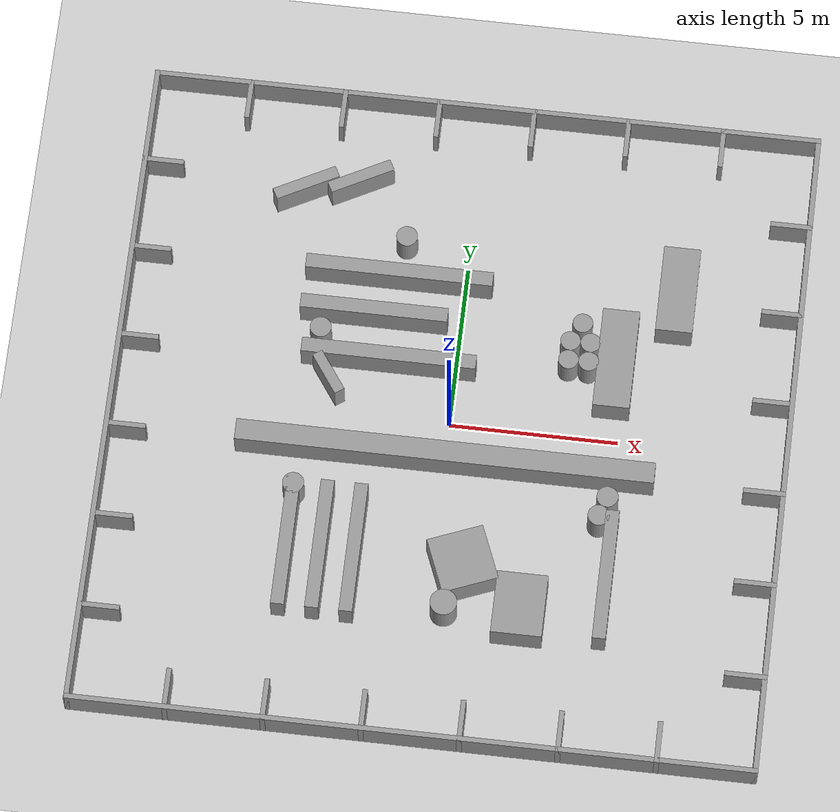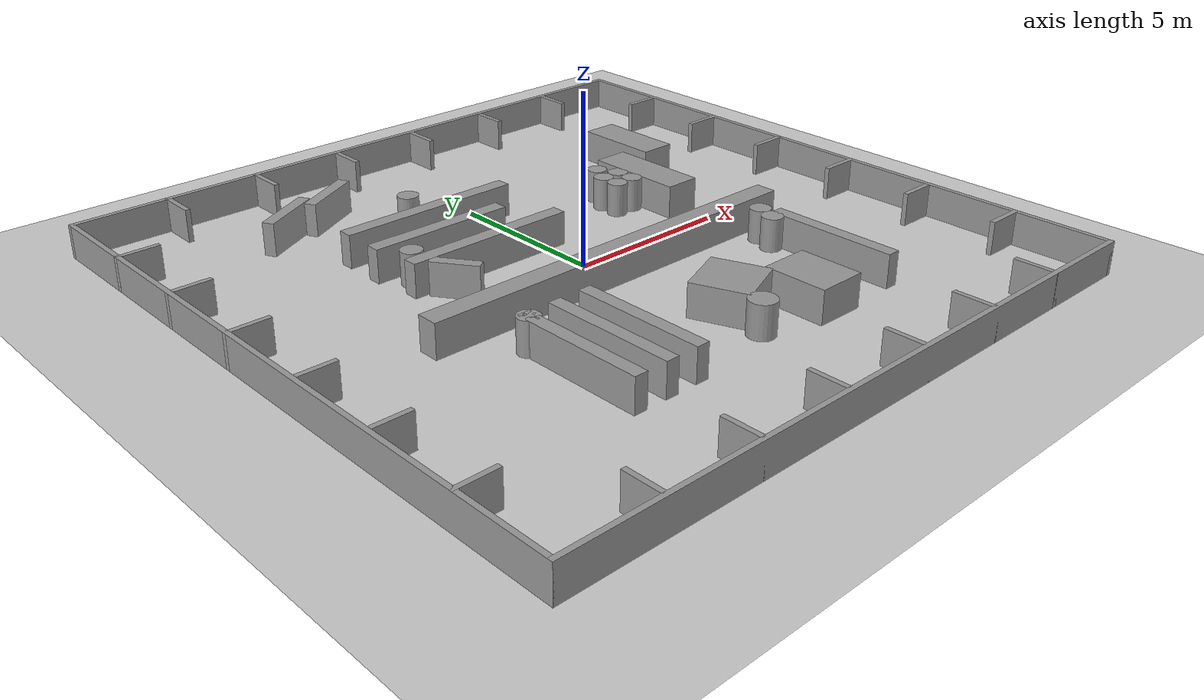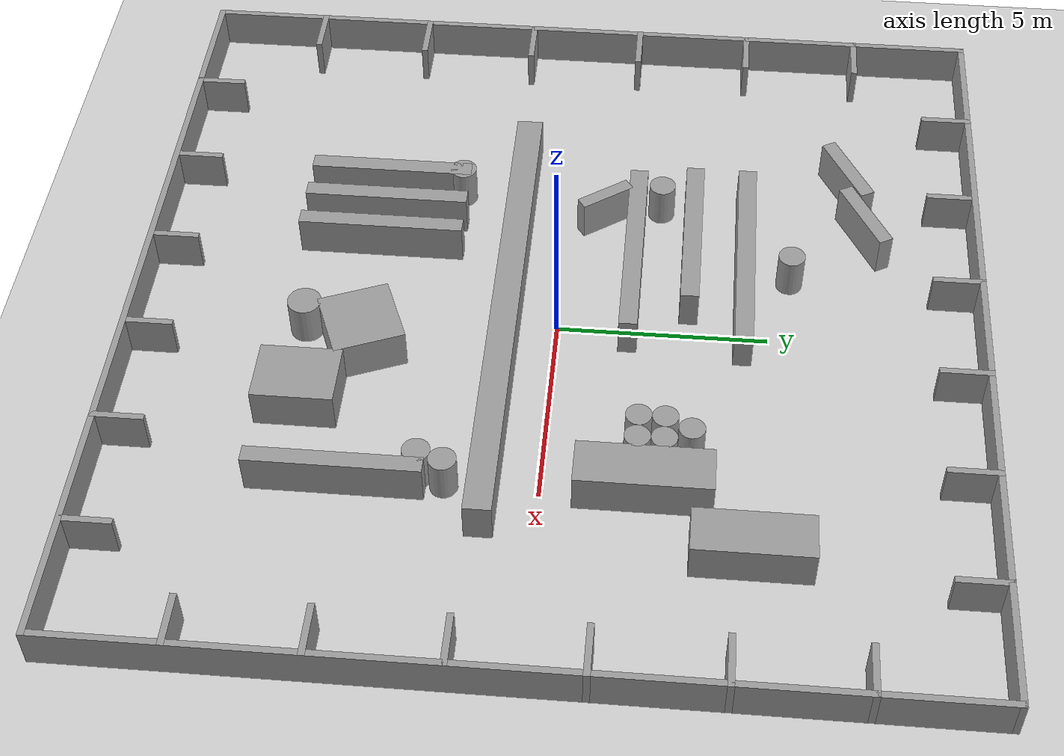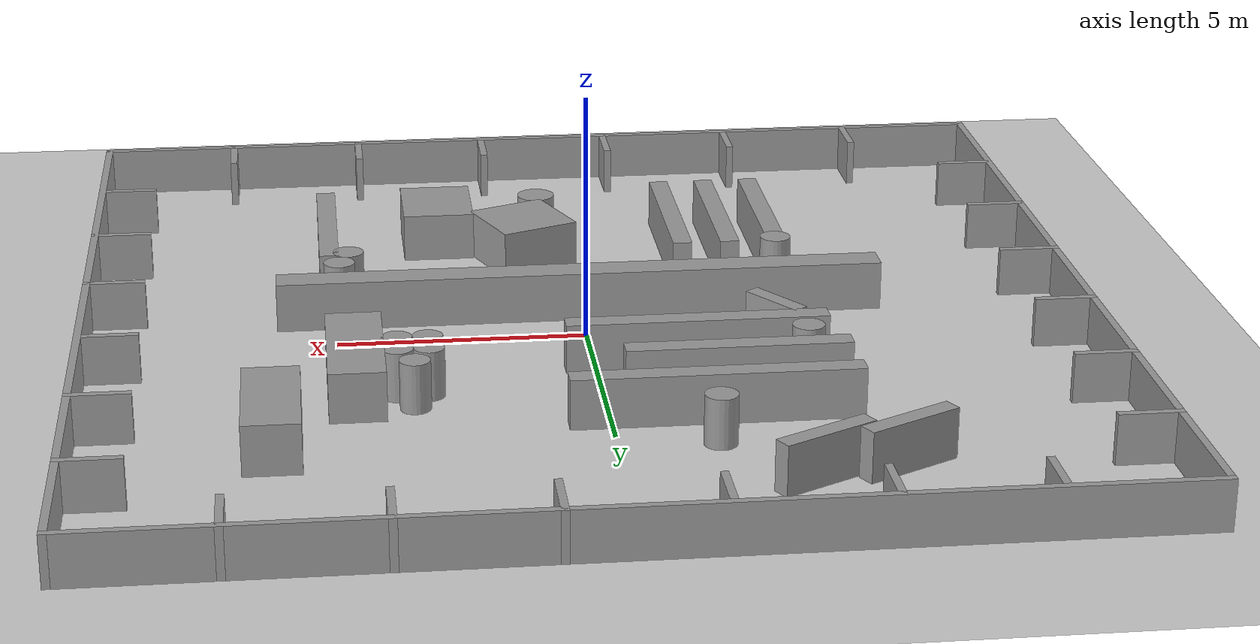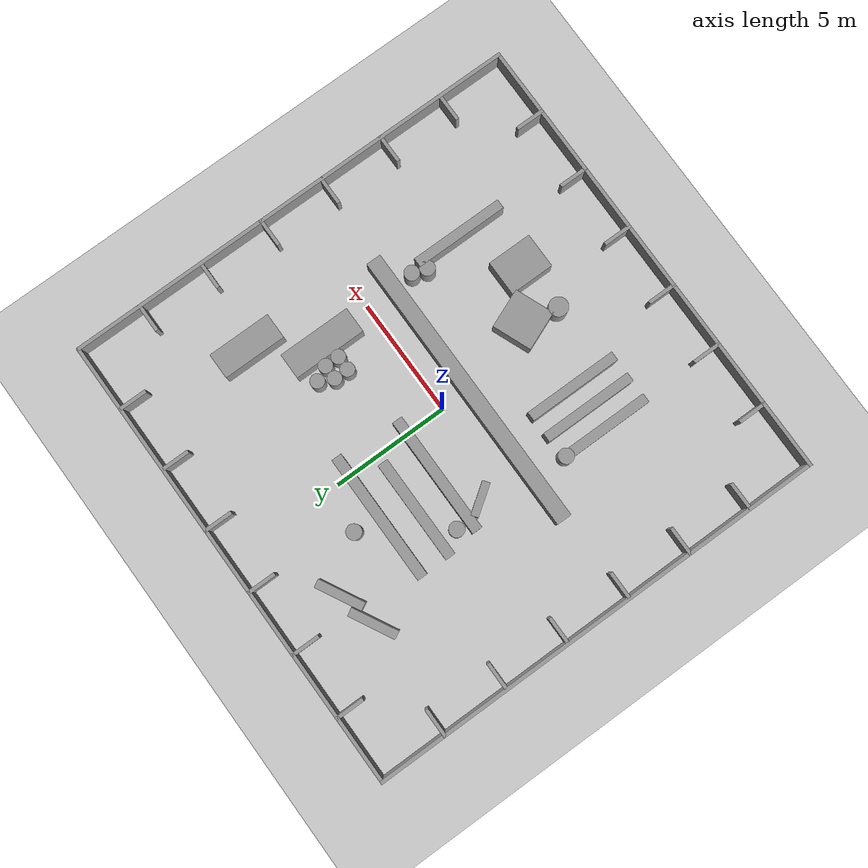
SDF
<?xml version="1.0" ?>
<sdf version="1.6">
  <world name="hall">

    <include><uri>model://sun</uri></include>
    <include><uri>model://ground_plane</uri></include>

    <physics name="default_physics" default="true" type="ode">
      <max_step_size>0.001</max_step_size>
      <real_time_factor>1.0</real_time_factor>
      <real_time_update_rate>1000</real_time_update_rate>
    </physics>

    <scene>
      <ambient>0.4 0.4 0.4 1</ambient>
      <background>0.7 0.7 0.7 1</background>
      <shadows>false</shadows>
    </scene>

    <model name="hall_obstacles">
      <static>true</static>
      <link name="body">
      <collision name="col_0">
        <pose>0.0000 -10.0000 0.5000 0 0 0.00000</pose>
        <geometry>
          <box><size>20.1500 0.1500 1.0000</size></box>
        </geometry>
      </collision>
      <visual name="vis_0">
        <pose>0.0000 -10.0000 0.5000 0 0 0.00000</pose>
        <geometry>
          <box><size>20.1500 0.1500 1.0000</size></box>
        </geometry>
        <material>
          <script>
            <uri>file://media/materials/scripts/gazebo.material</uri>
            <name>Gazebo/Grey</name>
          </script>
        </material>
      </visual>
      <collision name="col_1">
        <pose>10.0000 0.0000 0.5000 0 0 1.57080</pose>
        <geometry>
          <box><size>20.1500 0.1500 1.0000</size></box>
        </geometry>
      </collision>
      <visual name="vis_1">
        <pose>10.0000 0.0000 0.5000 0 0 1.57080</pose>
        <geometry>
          <box><size>20.1500 0.1500 1.0000</size></box>
        </geometry>
        <material>
          <script>
            <uri>file://media/materials/scripts/gazebo.material</uri>
            <name>Gazebo/Grey</name>
          </script>
        </material>
      </visual>
      <collision name="col_2">
        <pose>0.0000 10.0000 0.5000 0 0 3.14159</pose>
        <geometry>
          <box><size>20.1500 0.1500 1.0000</size></box>
        </geometry>
      </collision>
      <visual name="vis_2">
        <pose>0.0000 10.0000 0.5000 0 0 3.14159</pose>
        <geometry>
          <box><size>20.1500 0.1500 1.0000</size></box>
        </geometry>
        <material>
          <script>
            <uri>file://media/materials/scripts/gazebo.material</uri>
            <name>Gazebo/Grey</name>
          </script>
        </material>
      </visual>
      <collision name="col_3">
        <pose>-10.0000 0.0000 0.5000 0 0 -1.57080</pose>
        <geometry>
          <box><size>20.1500 0.1500 1.0000</size></box>
        </geometry>
      </collision>
      <visual name="vis_3">
        <pose>-10.0000 0.0000 0.5000 0 0 -1.57080</pose>
        <geometry>
          <box><size>20.1500 0.1500 1.0000</size></box>
        </geometry>
        <material>
          <script>
            <uri>file://media/materials/scripts/gazebo.material</uri>
            <name>Gazebo/Grey</name>
          </script>
        </material>
      </visual>
      <collision name="col_4">
        <pose>-7.1429 -9.4500 0.5000 0 0 1.57080</pose>
        <geometry>
          <box><size>1.2500 0.1500 1.0000</size></box>
        </geometry>
      </collision>
      <visual name="vis_4">
        <pose>-7.1429 -9.4500 0.5000 0 0 1.57080</pose>
        <geometry>
          <box><size>1.2500 0.1500 1.0000</size></box>
        </geometry>
        <material>
          <script>
            <uri>file://media/materials/scripts/gazebo.material</uri>
            <name>Gazebo/Grey</name>
          </script>
        </material>
      </visual>
      <collision name="col_5">
        <pose>-7.1429 9.4500 0.5000 0 0 -1.57080</pose>
        <geometry>
          <box><size>1.2500 0.1500 1.0000</size></box>
        </geometry>
      </collision>
      <visual name="vis_5">
        <pose>-7.1429 9.4500 0.5000 0 0 -1.57080</pose>
        <geometry>
          <box><size>1.2500 0.1500 1.0000</size></box>
        </geometry>
        <material>
          <script>
            <uri>file://media/materials/scripts/gazebo.material</uri>
            <name>Gazebo/Grey</name>
          </script>
        </material>
      </visual>
      <collision name="col_6">
        <pose>-9.4500 -7.1429 0.5000 0 0 0.00000</pose>
        <geometry>
          <box><size>1.2500 0.1500 1.0000</size></box>
        </geometry>
      </collision>
      <visual name="vis_6">
        <pose>-9.4500 -7.1429 0.5000 0 0 0.00000</pose>
        <geometry>
          <box><size>1.2500 0.1500 1.0000</size></box>
        </geometry>
        <material>
          <script>
            <uri>file://media/materials/scripts/gazebo.material</uri>
            <name>Gazebo/Grey</name>
          </script>
        </material>
      </visual>
      <collision name="col_7">
        <pose>9.4500 -7.1429 0.5000 0 0 3.14159</pose>
        <geometry>
          <box><size>1.2500 0.1500 1.0000</size></box>
        </geometry>
      </collision>
      <visual name="vis_7">
        <pose>9.4500 -7.1429 0.5000 0 0 3.14159</pose>
        <geometry>
          <box><size>1.2500 0.1500 1.0000</size></box>
        </geometry>
        <material>
          <script>
            <uri>file://media/materials/scripts/gazebo.material</uri>
            <name>Gazebo/Grey</name>
          </script>
        </material>
      </visual>
      <collision name="col_8">
        <pose>-4.2857 -9.4500 0.5000 0 0 1.57080</pose>
        <geometry>
          <box><size>1.2500 0.1500 1.0000</size></box>
        </geometry>
      </collision>
      <visual name="vis_8">
        <pose>-4.2857 -9.4500 0.5000 0 0 1.57080</pose>
        <geometry>
          <box><size>1.2500 0.1500 1.0000</size></box>
        </geometry>
        <material>
          <script>
            <uri>file://media/materials/scripts/gazebo.material</uri>
            <name>Gazebo/Grey</name>
          </script>
        </material>
      </visual>
      <collision name="col_9">
        <pose>-4.2857 9.4500 0.5000 0 0 -1.57080</pose>
        <geometry>
          <box><size>1.2500 0.1500 1.0000</size></box>
        </geometry>
      </collision>
      <visual name="vis_9">
        <pose>-4.2857 9.4500 0.5000 0 0 -1.57080</pose>
        <geometry>
          <box><size>1.2500 0.1500 1.0000</size></box>
        </geometry>
        <material>
          <script>
            <uri>file://media/materials/scripts/gazebo.material</uri>
            <name>Gazebo/Grey</name>
          </script>
        </material>
      </visual>
      <collision name="col_10">
        <pose>-9.4500 -4.2857 0.5000 0 0 0.00000</pose>
        <geometry>
          <box><size>1.2500 0.1500 1.0000</size></box>
        </geometry>
      </collision>
      <visual name="vis_10">
        <pose>-9.4500 -4.2857 0.5000 0 0 0.00000</pose>
        <geometry>
          <box><size>1.2500 0.1500 1.0000</size></box>
        </geometry>
        <material>
          <script>
            <uri>file://media/materials/scripts/gazebo.material</uri>
            <name>Gazebo/Grey</name>
          </script>
        </material>
      </visual>
      <collision name="col_11">
        <pose>9.4500 -4.2857 0.5000 0 0 3.14159</pose>
        <geometry>
          <box><size>1.2500 0.1500 1.0000</size></box>
        </geometry>
      </collision>
      <visual name="vis_11">
        <pose>9.4500 -4.2857 0.5000 0 0 3.14159</pose>
        <geometry>
          <box><size>1.2500 0.1500 1.0000</size></box>
        </geometry>
        <material>
          <script>
            <uri>file://media/materials/scripts/gazebo.material</uri>
            <name>Gazebo/Grey</name>
          </script>
        </material>
      </visual>
      <collision name="col_12">
        <pose>-1.4286 -9.4500 0.5000 0 0 1.57080</pose>
        <geometry>
          <box><size>1.2500 0.1500 1.0000</size></box>
        </geometry>
      </collision>
      <visual name="vis_12">
        <pose>-1.4286 -9.4500 0.5000 0 0 1.57080</pose>
        <geometry>
          <box><size>1.2500 0.1500 1.0000</size></box>
        </geometry>
        <material>
          <script>
            <uri>file://media/materials/scripts/gazebo.material</uri>
            <name>Gazebo/Grey</name>
          </script>
        </material>
      </visual>
      <collision name="col_13">
        <pose>-1.4286 9.4500 0.5000 0 0 -1.57080</pose>
        <geometry>
          <box><size>1.2500 0.1500 1.0000</size></box>
        </geometry>
      </collision>
      <visual name="vis_13">
        <pose>-1.4286 9.4500 0.5000 0 0 -1.57080</pose>
        <geometry>
          <box><size>1.2500 0.1500 1.0000</size></box>
        </geometry>
        <material>
          <script>
            <uri>file://media/materials/scripts/gazebo.material</uri>
            <name>Gazebo/Grey</name>
          </script>
        </material>
      </visual>
      <collision name="col_14">
        <pose>-9.4500 -1.4286 0.5000 0 0 0.00000</pose>
        <geometry>
          <box><size>1.2500 0.1500 1.0000</size></box>
        </geometry>
      </collision>
      <visual name="vis_14">
        <pose>-9.4500 -1.4286 0.5000 0 0 0.00000</pose>
        <geometry>
          <box><size>1.2500 0.1500 1.0000</size></box>
        </geometry>
        <material>
          <script>
            <uri>file://media/materials/scripts/gazebo.material</uri>
            <name>Gazebo/Grey</name>
          </script>
        </material>
      </visual>
      <collision name="col_15">
        <pose>9.4500 -1.4286 0.5000 0 0 3.14159</pose>
        <geometry>
          <box><size>1.2500 0.1500 1.0000</size></box>
        </geometry>
      </collision>
      <visual name="vis_15">
        <pose>9.4500 -1.4286 0.5000 0 0 3.14159</pose>
        <geometry>
          <box><size>1.2500 0.1500 1.0000</size></box>
        </geometry>
        <material>
          <script>
            <uri>file://media/materials/scripts/gazebo.material</uri>
            <name>Gazebo/Grey</name>
          </script>
        </material>
      </visual>
      <collision name="col_16">
        <pose>1.4286 -9.4500 0.5000 0 0 1.57080</pose>
        <geometry>
          <box><size>1.2500 0.1500 1.0000</size></box>
        </geometry>
      </collision>
      <visual name="vis_16">
        <pose>1.4286 -9.4500 0.5000 0 0 1.57080</pose>
        <geometry>
          <box><size>1.2500 0.1500 1.0000</size></box>
        </geometry>
        <material>
          <script>
            <uri>file://media/materials/scripts/gazebo.material</uri>
            <name>Gazebo/Grey</name>
          </script>
        </material>
      </visual>
      <collision name="col_17">
        <pose>1.4286 9.4500 0.5000 0 0 -1.57080</pose>
        <geometry>
          <box><size>1.2500 0.1500 1.0000</size></box>
        </geometry>
      </collision>
      <visual name="vis_17">
        <pose>1.4286 9.4500 0.5000 0 0 -1.57080</pose>
        <geometry>
          <box><size>1.2500 0.1500 1.0000</size></box>
        </geometry>
        <material>
          <script>
            <uri>file://media/materials/scripts/gazebo.material</uri>
            <name>Gazebo/Grey</name>
          </script>
        </material>
      </visual>
      <collision name="col_18">
        <pose>-9.4500 1.4286 0.5000 0 0 0.00000</pose>
        <geometry>
          <box><size>1.2500 0.1500 1.0000</size></box>
        </geometry>
      </collision>
      <visual name="vis_18">
        <pose>-9.4500 1.4286 0.5000 0 0 0.00000</pose>
        <geometry>
          <box><size>1.2500 0.1500 1.0000</size></box>
        </geometry>
        <material>
          <script>
            <uri>file://media/materials/scripts/gazebo.material</uri>
            <name>Gazebo/Grey</name>
          </script>
        </material>
      </visual>
      <collision name="col_19">
        <pose>9.4500 1.4286 0.5000 0 0 3.14159</pose>
        <geometry>
          <box><size>1.2500 0.1500 1.0000</size></box>
        </geometry>
      </collision>
      <visual name="vis_19">
        <pose>9.4500 1.4286 0.5000 0 0 3.14159</pose>
        <geometry>
          <box><size>1.2500 0.1500 1.0000</size></box>
        </geometry>
        <material>
          <script>
            <uri>file://media/materials/scripts/gazebo.material</uri>
            <name>Gazebo/Grey</name>
          </script>
        </material>
      </visual>
      <collision name="col_20">
        <pose>4.2857 -9.4500 0.5000 0 0 1.57080</pose>
        <geometry>
          <box><size>1.2500 0.1500 1.0000</size></box>
        </geometry>
      </collision>
      <visual name="vis_20">
        <pose>4.2857 -9.4500 0.5000 0 0 1.57080</pose>
        <geometry>
          <box><size>1.2500 0.1500 1.0000</size></box>
        </geometry>
        <material>
          <script>
            <uri>file://media/materials/scripts/gazebo.material</uri>
            <name>Gazebo/Grey</name>
          </script>
        </material>
      </visual>
      <collision name="col_21">
        <pose>4.2857 9.4500 0.5000 0 0 -1.57080</pose>
        <geometry>
          <box><size>1.2500 0.1500 1.0000</size></box>
        </geometry>
      </collision>
      <visual name="vis_21">
        <pose>4.2857 9.4500 0.5000 0 0 -1.57080</pose>
        <geometry>
          <box><size>1.2500 0.1500 1.0000</size></box>
        </geometry>
        <material>
          <script>
            <uri>file://media/materials/scripts/gazebo.material</uri>
            <name>Gazebo/Grey</name>
          </script>
        </material>
      </visual>
      <collision name="col_22">
        <pose>-9.4500 4.2857 0.5000 0 0 0.00000</pose>
        <geometry>
          <box><size>1.2500 0.1500 1.0000</size></box>
        </geometry>
      </collision>
      <visual name="vis_22">
        <pose>-9.4500 4.2857 0.5000 0 0 0.00000</pose>
        <geometry>
          <box><size>1.2500 0.1500 1.0000</size></box>
        </geometry>
        <material>
          <script>
            <uri>file://media/materials/scripts/gazebo.material</uri>
            <name>Gazebo/Grey</name>
          </script>
        </material>
      </visual>
      <collision name="col_23">
        <pose>9.4500 4.2857 0.5000 0 0 3.14159</pose>
        <geometry>
          <box><size>1.2500 0.1500 1.0000</size></box>
        </geometry>
      </collision>
      <visual name="vis_23">
        <pose>9.4500 4.2857 0.5000 0 0 3.14159</pose>
        <geometry>
          <box><size>1.2500 0.1500 1.0000</size></box>
        </geometry>
        <material>
          <script>
            <uri>file://media/materials/scripts/gazebo.material</uri>
            <name>Gazebo/Grey</name>
          </script>
        </material>
      </visual>
      <collision name="col_24">
        <pose>7.1429 -9.4500 0.5000 0 0 1.57080</pose>
        <geometry>
          <box><size>1.2500 0.1500 1.0000</size></box>
        </geometry>
      </collision>
      <visual name="vis_24">
        <pose>7.1429 -9.4500 0.5000 0 0 1.57080</pose>
        <geometry>
          <box><size>1.2500 0.1500 1.0000</size></box>
        </geometry>
        <material>
          <script>
            <uri>file://media/materials/scripts/gazebo.material</uri>
            <name>Gazebo/Grey</name>
          </script>
        </material>
      </visual>
      <collision name="col_25">
        <pose>7.1429 9.4500 0.5000 0 0 -1.57080</pose>
        <geometry>
          <box><size>1.2500 0.1500 1.0000</size></box>
        </geometry>
      </collision>
      <visual name="vis_25">
        <pose>7.1429 9.4500 0.5000 0 0 -1.57080</pose>
        <geometry>
          <box><size>1.2500 0.1500 1.0000</size></box>
        </geometry>
        <material>
          <script>
            <uri>file://media/materials/scripts/gazebo.material</uri>
            <name>Gazebo/Grey</name>
          </script>
        </material>
      </visual>
      <collision name="col_26">
        <pose>-9.4500 7.1429 0.5000 0 0 0.00000</pose>
        <geometry>
          <box><size>1.2500 0.1500 1.0000</size></box>
        </geometry>
      </collision>
      <visual name="vis_26">
        <pose>-9.4500 7.1429 0.5000 0 0 0.00000</pose>
        <geometry>
          <box><size>1.2500 0.1500 1.0000</size></box>
        </geometry>
        <material>
          <script>
            <uri>file://media/materials/scripts/gazebo.material</uri>
            <name>Gazebo/Grey</name>
          </script>
        </material>
      </visual>
      <collision name="col_27">
        <pose>9.4500 7.1429 0.5000 0 0 3.14159</pose>
        <geometry>
          <box><size>1.2500 0.1500 1.0000</size></box>
        </geometry>
      </collision>
      <visual name="vis_27">
        <pose>9.4500 7.1429 0.5000 0 0 3.14159</pose>
        <geometry>
          <box><size>1.2500 0.1500 1.0000</size></box>
        </geometry>
        <material>
          <script>
            <uri>file://media/materials/scripts/gazebo.material</uri>
            <name>Gazebo/Grey</name>
          </script>
        </material>
      </visual>
      <collision name="col_28">
        <pose>0.0000 -1.2000 0.5000 0 0 0.00000</pose>
        <geometry>
          <box><size>12.4000 0.6400 1.0000</size></box>
        </geometry>
      </collision>
      <visual name="vis_28">
        <pose>0.0000 -1.2000 0.5000 0 0 0.00000</pose>
        <geometry>
          <box><size>12.4000 0.6400 1.0000</size></box>
        </geometry>
        <material>
          <script>
            <uri>file://media/materials/scripts/gazebo.material</uri>
            <name>Gazebo/Grey</name>
          </script>
        </material>
      </visual>
      <collision name="col_29">
        <pose>-2.0000 4.4000 0.5000 0 0 0.00000</pose>
        <geometry>
          <box><size>5.6000 0.4400 1.0000</size></box>
        </geometry>
      </collision>
      <visual name="vis_29">
        <pose>-2.0000 4.4000 0.5000 0 0 0.00000</pose>
        <geometry>
          <box><size>5.6000 0.4400 1.0000</size></box>
        </geometry>
        <material>
          <script>
            <uri>file://media/materials/scripts/gazebo.material</uri>
            <name>Gazebo/Grey</name>
          </script>
        </material>
      </visual>
      <collision name="col_30">
        <pose>-2.6000 3.1000 0.5000 0 0 0.00000</pose>
        <geometry>
          <box><size>4.4000 0.4400 1.0000</size></box>
        </geometry>
      </collision>
      <visual name="vis_30">
        <pose>-2.6000 3.1000 0.5000 0 0 0.00000</pose>
        <geometry>
          <box><size>4.4000 0.4400 1.0000</size></box>
        </geometry>
        <material>
          <script>
            <uri>file://media/materials/scripts/gazebo.material</uri>
            <name>Gazebo/Grey</name>
          </script>
        </material>
      </visual>
      <collision name="col_31">
        <pose>-2.0000 1.7000 0.5000 0 0 0.00000</pose>
        <geometry>
          <box><size>5.2000 0.4400 1.0000</size></box>
        </geometry>
      </collision>
      <visual name="vis_31">
        <pose>-2.0000 1.7000 0.5000 0 0 0.00000</pose>
        <geometry>
          <box><size>5.2000 0.4400 1.0000</size></box>
        </geometry>
        <material>
          <script>
            <uri>file://media/materials/scripts/gazebo.material</uri>
            <name>Gazebo/Grey</name>
          </script>
        </material>
      </visual>
      <collision name="col_32">
        <pose>-5.1000 6.9000 0.5000 0 0 0.48869</pose>
        <geometry>
          <box><size>2.0000 0.3600 1.0000</size></box>
        </geometry>
      </collision>
      <visual name="vis_32">
        <pose>-5.1000 6.9000 0.5000 0 0 0.48869</pose>
        <geometry>
          <box><size>2.0000 0.3600 1.0000</size></box>
        </geometry>
        <material>
          <script>
            <uri>file://media/materials/scripts/gazebo.material</uri>
            <name>Gazebo/Grey</name>
          </script>
        </material>
      </visual>
      <collision name="col_33">
        <pose>-3.5000 7.3000 0.5000 0 0 0.48869</pose>
        <geometry>
          <box><size>2.0000 0.3600 1.0000</size></box>
        </geometry>
      </collision>
      <visual name="vis_33">
        <pose>-3.5000 7.3000 0.5000 0 0 0.48869</pose>
        <geometry>
          <box><size>2.0000 0.3600 1.0000</size></box>
        </geometry>
        <material>
          <script>
            <uri>file://media/materials/scripts/gazebo.material</uri>
            <name>Gazebo/Grey</name>
          </script>
        </material>
      </visual>
      <collision name="col_34">
        <pose>-3.7000 0.9000 0.5000 0 0 -0.95993</pose>
        <geometry>
          <box><size>1.4000 0.3200 1.0000</size></box>
        </geometry>
      </collision>
      <visual name="vis_34">
        <pose>-3.7000 0.9000 0.5000 0 0 -0.95993</pose>
        <geometry>
          <box><size>1.4000 0.3200 1.0000</size></box>
        </geometry>
        <material>
          <script>
            <uri>file://media/materials/scripts/gazebo.material</uri>
            <name>Gazebo/Grey</name>
          </script>
        </material>
      </visual>
      <collision name="col_35">
        <pose>-4.3000 -4.5000 0.5000 0 0 0.00000</pose>
        <geometry>
          <box><size>0.4000 4.0000 1.0000</size></box>
        </geometry>
      </collision>
      <visual name="vis_35">
        <pose>-4.3000 -4.5000 0.5000 0 0 0.00000</pose>
        <geometry>
          <box><size>0.4000 4.0000 1.0000</size></box>
        </geometry>
        <material>
          <script>
            <uri>file://media/materials/scripts/gazebo.material</uri>
            <name>Gazebo/Grey</name>
          </script>
        </material>
      </visual>
      <collision name="col_36">
        <pose>-3.3000 -4.5000 0.5000 0 0 0.00000</pose>
        <geometry>
          <box><size>0.4000 4.0000 1.0000</size></box>
        </geometry>
      </collision>
      <visual name="vis_36">
        <pose>-3.3000 -4.5000 0.5000 0 0 0.00000</pose>
        <geometry>
          <box><size>0.4000 4.0000 1.0000</size></box>
        </geometry>
        <material>
          <script>
            <uri>file://media/materials/scripts/gazebo.material</uri>
            <name>Gazebo/Grey</name>
          </script>
        </material>
      </visual>
      <collision name="col_37">
        <pose>-2.3000 -4.5000 0.5000 0 0 0.00000</pose>
        <geometry>
          <box><size>0.4000 4.0000 1.0000</size></box>
        </geometry>
      </collision>
      <visual name="vis_37">
        <pose>-2.3000 -4.5000 0.5000 0 0 0.00000</pose>
        <geometry>
          <box><size>0.4000 4.0000 1.0000</size></box>
        </geometry>
        <material>
          <script>
            <uri>file://media/materials/scripts/gazebo.material</uri>
            <name>Gazebo/Grey</name>
          </script>
        </material>
      </visual>
      <collision name="col_38">
        <pose>5.1000 -4.5000 0.5000 0 0 0.00000</pose>
        <geometry>
          <box><size>0.4000 4.0000 1.0000</size></box>
        </geometry>
      </collision>
      <visual name="vis_38">
        <pose>5.1000 -4.5000 0.5000 0 0 0.00000</pose>
        <geometry>
          <box><size>0.4000 4.0000 1.0000</size></box>
        </geometry>
        <material>
          <script>
            <uri>file://media/materials/scripts/gazebo.material</uri>
            <name>Gazebo/Grey</name>
          </script>
        </material>
      </visual>
      <collision name="col_39">
        <pose>0.9000 -4.5000 0.5000 0 0 0.38397</pose>
        <geometry>
          <box><size>1.7000 1.7000 1.0000</size></box>
        </geometry>
      </collision>
      <visual name="vis_39">
        <pose>0.9000 -4.5000 0.5000 0 0 0.38397</pose>
        <geometry>
          <box><size>1.7000 1.7000 1.0000</size></box>
        </geometry>
        <material>
          <script>
            <uri>file://media/materials/scripts/gazebo.material</uri>
            <name>Gazebo/Grey</name>
          </script>
        </material>
      </visual>
      <collision name="col_40">
        <pose>2.7000 -5.7000 0.5000 0 0 0.00000</pose>
        <geometry>
          <box><size>1.5000 1.9000 1.0000</size></box>
        </geometry>
      </collision>
      <visual name="vis_40">
        <pose>2.7000 -5.7000 0.5000 0 0 0.00000</pose>
        <geometry>
          <box><size>1.5000 1.9000 1.0000</size></box>
        </geometry>
        <material>
          <script>
            <uri>file://media/materials/scripts/gazebo.material</uri>
            <name>Gazebo/Grey</name>
          </script>
        </material>
      </visual>
      <collision name="col_41">
        <pose>4.7000 2.3000 0.5000 0 0 0.00000</pose>
        <geometry>
          <box><size>1.1000 3.1000 1.0000</size></box>
        </geometry>
      </collision>
      <visual name="vis_41">
        <pose>4.7000 2.3000 0.5000 0 0 0.00000</pose>
        <geometry>
          <box><size>1.1000 3.1000 1.0000</size></box>
        </geometry>
        <material>
          <script>
            <uri>file://media/materials/scripts/gazebo.material</uri>
            <name>Gazebo/Grey</name>
          </script>
        </material>
      </visual>
      <collision name="col_42">
        <pose>6.3000 4.7000 0.5000 0 0 0.00000</pose>
        <geometry>
          <box><size>1.1000 2.7000 1.0000</size></box>
        </geometry>
      </collision>
      <visual name="vis_42">
        <pose>6.3000 4.7000 0.5000 0 0 0.00000</pose>
        <geometry>
          <box><size>1.1000 2.7000 1.0000</size></box>
        </geometry>
        <material>
          <script>
            <uri>file://media/materials/scripts/gazebo.material</uri>
            <name>Gazebo/Grey</name>
          </script>
        </material>
      </visual>
      <collision name="col_43">
        <pose>-1.9000 5.5000 0.5000 0 0 0.00000</pose>
        <geometry>
          <cylinder><radius>0.3200</radius><length>1.0000</length></cylinder>
        </geometry>
      </collision>
      <visual name="vis_43">
        <pose>-1.9000 5.5000 0.5000 0 0 0.00000</pose>
        <geometry>
          <cylinder><radius>0.3200</radius><length>1.0000</length></cylinder>
        </geometry>
        <material>
          <script>
            <uri>file://media/materials/scripts/gazebo.material</uri>
            <name>Gazebo/Grey</name>
          </script>
        </material>
      </visual>
      <collision name="col_44">
        <pose>-4.1000 2.3000 0.5000 0 0 0.00000</pose>
        <geometry>
          <cylinder><radius>0.3200</radius><length>1.0000</length></cylinder>
        </geometry>
      </collision>
      <visual name="vis_44">
        <pose>-4.1000 2.3000 0.5000 0 0 0.00000</pose>
        <geometry>
          <cylinder><radius>0.3200</radius><length>1.0000</length></cylinder>
        </geometry>
        <material>
          <script>
            <uri>file://media/materials/scripts/gazebo.material</uri>
            <name>Gazebo/Grey</name>
          </script>
        </material>
      </visual>
      <collision name="col_45">
        <pose>-4.3000 -2.7000 0.5000 0 0 0.00000</pose>
        <geometry>
          <cylinder><radius>0.3200</radius><length>1.0000</length></cylinder>
        </geometry>
      </collision>
      <visual name="vis_45">
        <pose>-4.3000 -2.7000 0.5000 0 0 0.00000</pose>
        <geometry>
          <cylinder><radius>0.3200</radius><length>1.0000</length></cylinder>
        </geometry>
        <material>
          <script>
            <uri>file://media/materials/scripts/gazebo.material</uri>
            <name>Gazebo/Grey</name>
          </script>
        </material>
      </visual>
      <collision name="col_46">
        <pose>0.5000 -5.9000 0.5000 0 0 0.00000</pose>
        <geometry>
          <cylinder><radius>0.4000</radius><length>1.0000</length></cylinder>
        </geometry>
      </collision>
      <visual name="vis_46">
        <pose>0.5000 -5.9000 0.5000 0 0 0.00000</pose>
        <geometry>
          <cylinder><radius>0.4000</radius><length>1.0000</length></cylinder>
        </geometry>
        <material>
          <script>
            <uri>file://media/materials/scripts/gazebo.material</uri>
            <name>Gazebo/Grey</name>
          </script>
        </material>
      </visual>
      <collision name="col_47">
        <pose>4.7000 -2.7000 0.5000 0 0 0.00000</pose>
        <geometry>
          <cylinder><radius>0.3200</radius><length>1.0000</length></cylinder>
        </geometry>
      </collision>
      <visual name="vis_47">
        <pose>4.7000 -2.7000 0.5000 0 0 0.00000</pose>
        <geometry>
          <cylinder><radius>0.3200</radius><length>1.0000</length></cylinder>
        </geometry>
        <material>
          <script>
            <uri>file://media/materials/scripts/gazebo.material</uri>
            <name>Gazebo/Grey</name>
          </script>
        </material>
      </visual>
      <collision name="col_48">
        <pose>4.9000 -2.1000 0.5000 0 0 0.00000</pose>
        <geometry>
          <cylinder><radius>0.3200</radius><length>1.0000</length></cylinder>
        </geometry>
      </collision>
      <visual name="vis_48">
        <pose>4.9000 -2.1000 0.5000 0 0 0.00000</pose>
        <geometry>
          <cylinder><radius>0.3200</radius><length>1.0000</length></cylinder>
        </geometry>
        <material>
          <script>
            <uri>file://media/materials/scripts/gazebo.material</uri>
            <name>Gazebo/Grey</name>
          </script>
        </material>
      </visual>
      <collision name="col_49">
        <pose>3.3000 2.1000 0.5000 0 0 0.00000</pose>
        <geometry>
          <cylinder><radius>0.3000</radius><length>1.0000</length></cylinder>
        </geometry>
      </collision>
      <visual name="vis_49">
        <pose>3.3000 2.1000 0.5000 0 0 0.00000</pose>
        <geometry>
          <cylinder><radius>0.3000</radius><length>1.0000</length></cylinder>
        </geometry>
        <material>
          <script>
            <uri>file://media/materials/scripts/gazebo.material</uri>
            <name>Gazebo/Grey</name>
          </script>
        </material>
      </visual>
      <collision name="col_50">
        <pose>3.9000 2.1000 0.5000 0 0 0.00000</pose>
        <geometry>
          <cylinder><radius>0.3000</radius><length>1.0000</length></cylinder>
        </geometry>
      </collision>
      <visual name="vis_50">
        <pose>3.9000 2.1000 0.5000 0 0 0.00000</pose>
        <geometry>
          <cylinder><radius>0.3000</radius><length>1.0000</length></cylinder>
        </geometry>
        <material>
          <script>
            <uri>file://media/materials/scripts/gazebo.material</uri>
            <name>Gazebo/Grey</name>
          </script>
        </material>
      </visual>
      <collision name="col_51">
        <pose>3.3000 2.7000 0.5000 0 0 0.00000</pose>
        <geometry>
          <cylinder><radius>0.3000</radius><length>1.0000</length></cylinder>
        </geometry>
      </collision>
      <visual name="vis_51">
        <pose>3.3000 2.7000 0.5000 0 0 0.00000</pose>
        <geometry>
          <cylinder><radius>0.3000</radius><length>1.0000</length></cylinder>
        </geometry>
        <material>
          <script>
            <uri>file://media/materials/scripts/gazebo.material</uri>
            <name>Gazebo/Grey</name>
          </script>
        </material>
      </visual>
      <collision name="col_52">
        <pose>3.9000 2.7000 0.5000 0 0 0.00000</pose>
        <geometry>
          <cylinder><radius>0.3000</radius><length>1.0000</length></cylinder>
        </geometry>
      </collision>
      <visual name="vis_52">
        <pose>3.9000 2.7000 0.5000 0 0 0.00000</pose>
        <geometry>
          <cylinder><radius>0.3000</radius><length>1.0000</length></cylinder>
        </geometry>
        <material>
          <script>
            <uri>file://media/materials/scripts/gazebo.material</uri>
            <name>Gazebo/Grey</name>
          </script>
        </material>
      </visual>
      <collision name="col_53">
        <pose>3.6000 3.3000 0.5000 0 0 0.00000</pose>
        <geometry>
          <cylinder><radius>0.3000</radius><length>1.0000</length></cylinder>
        </geometry>
      </collision>
      <visual name="vis_53">
        <pose>3.6000 3.3000 0.5000 0 0 0.00000</pose>
        <geometry>
          <cylinder><radius>0.3000</radius><length>1.0000</length></cylinder>
        </geometry>
        <material>
          <script>
            <uri>file://media/materials/scripts/gazebo.material</uri>
            <name>Gazebo/Grey</name>
          </script>
        </material>
      </visual>
      </link>
    </model>

  </world>
</sdf>
